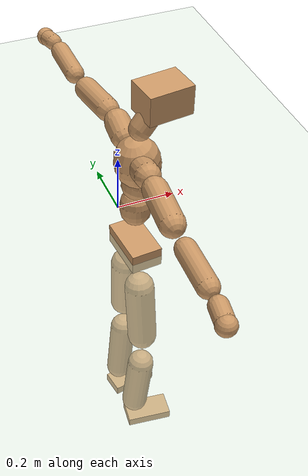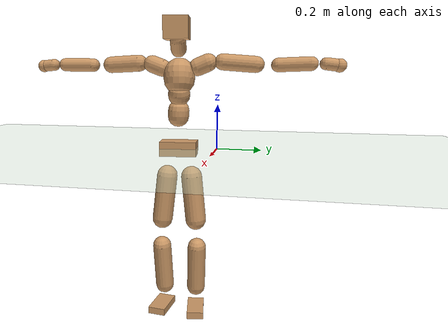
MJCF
<mujoco model="humanoid">
  <compiler coordinate="local" angle="radian"/>
  <default>
    <joint damping="0.0" armature="0.01" stiffness="0.0" limited="true"/>
    <geom conaffinity="1" condim="3" contype="7" margin="0.001" rgba="0.8 0.6 .4 1"/>
  </default>
  <asset>
    <texture type="skybox" builtin="gradient" rgb1=".4 .5 .6" rgb2="0 0 0" width="100" height="100"/>
    <texture builtin="flat" height="1278" mark="cross" markrgb="1 1 1" name="texgeom" random="0.01" rgb1="0.8 0.6 0.4" rgb2="0.8 0.6 0.4" type="cube" width="127"/>
    <texture builtin="checker" height="100" name="texplane" rgb1="0 0 0" rgb2="0.8 0.8 0.8" type="2d" width="100"/>
    <material name="MatPlane" reflectance="0.5" shininess="1" specular="1" texrepeat="60 60" texture="texplane"/>
    <material name="geom" texture="texgeom" texuniform="true"/>
  </asset>
  <worldbody>
    <light cutoff="100" diffuse="1 1 1" dir="-0 0 -1.3" directional="true" exponent="1" pos="0 0 1.3" specular=".1 .1 .1"/>
    <geom conaffinity="1" condim="3" name="floor" pos="0 0 0" rgba="0.8 0.9 0.8 1" size="100 100 .2" type="plane" material="MatPlane"/>
    <body name="Pelvis" pos="-0.004 -0.1813 0.0067">
      <freejoint name="Pelvis"/>
      <geom type="box" contype="1" conaffinity="1" density="500" pos="-0.0064 -0.0005 -0.0106" size="0.0506 0.0848 0.0337" quat="0.9992 0.0000 0.0000 0.0411" name="Pelvis"/>
      <body name="L_Hip" pos="-0.0166 0.0517 -0.0762">
        <joint name="L_Hip_x" type="hinge" pos="0 0 0" axis="1 0 0" stiffness="800" damping="80" armature="0.02" range="-180.0000 180.0000"/>
        <joint name="L_Hip_y" type="hinge" pos="0 0 0" axis="0 1 0" stiffness="800" damping="80" armature="0.02" range="-180.0000 180.0000"/>
        <joint name="L_Hip_z" type="hinge" pos="0 0 0" axis="0 0 1" stiffness="800" damping="80" armature="0.02" range="-180.0000 180.0000"/>
        <geom type="capsule" contype="1" conaffinity="1" density="500" fromto="0.0022 0.0076 -0.0703 0.0087 0.0303 -0.2810" size="0.0492" name="L_Hip"/>
        <body name="L_Knee" pos="0.0109 0.0378 -0.3513">
          <joint name="L_Knee_x" type="hinge" pos="0 0 0" axis="1 0 0" stiffness="800" damping="80" armature="0.02" range="-180.0000 180.0000"/>
          <joint name="L_Knee_y" type="hinge" pos="0 0 0" axis="0 1 0" stiffness="800" damping="80" armature="0.02" range="-180.0000 180.0000"/>
          <joint name="L_Knee_z" type="hinge" pos="0 0 0" axis="0 0 1" stiffness="800" damping="80" armature="0.02" range="-180.0000 180.0000"/>
          <geom type="capsule" contype="1" conaffinity="1" density="500" fromto="-0.0062 -0.0021 -0.0717 -0.0249 -0.0084 -0.2867" size="0.0441" name="L_Knee"/>
          <body name="L_Ankle" pos="-0.0311 -0.0106 -0.3584">
            <joint name="L_Ankle_x" type="hinge" pos="0 0 0" axis="1 0 0" stiffness="800" damping="80" armature="0.02" range="-180.0000 180.0000"/>
            <joint name="L_Ankle_y" type="hinge" pos="0 0 0" axis="0 1 0" stiffness="800" damping="80" armature="0.02" range="-180.0000 180.0000"/>
            <joint name="L_Ankle_z" type="hinge" pos="0 0 0" axis="0 0 1" stiffness="800" damping="80" armature="0.02" range="-180.0000 180.0000"/>
            <geom type="box" contype="1" conaffinity="1" density="500" pos="0.0541 0.0089 -0.0251" size="0.0782 0.0396 0.0168" quat="0.9967 0.0000 0.0000 0.0816" name="L_Ankle"/>
            <body name="L_Toe" pos="0.1083 0.0179 -0.0501">
              <joint name="L_Toe_x" type="hinge" pos="0 0 0" axis="1 0 0" stiffness="500" damping="50" armature="0.02" range="-180.0000 180.0000"/>
              <joint name="L_Toe_y" type="hinge" pos="0 0 0" axis="0 1 0" stiffness="500" damping="50" armature="0.02" range="-180.0000 180.0000"/>
              <joint name="L_Toe_z" type="hinge" pos="0 0 0" axis="0 0 1" stiffness="500" damping="50" armature="0.02" range="-180.0000 180.0000"/>
              <geom type="box" contype="1" conaffinity="1" density="500" pos="0.0000 0.0000 0.0269" size="0.0008 0.002 0.0009" quat="0.9960 0.0000 0.0000 0.0890" name="L_Toe"/>
            </body>
          </body>
        </body>
      </body>
      <body name="R_Hip" pos="-0.014 -0.0507 -0.0738">
        <joint name="R_Hip_x" type="hinge" pos="0 0 0" axis="1 0 0" stiffness="800" damping="80" armature="0.02" range="-180.0000 180.0000"/>
        <joint name="R_Hip_y" type="hinge" pos="0 0 0" axis="0 1 0" stiffness="800" damping="80" armature="0.02" range="-180.0000 180.0000"/>
        <joint name="R_Hip_z" type="hinge" pos="0 0 0" axis="0 0 1" stiffness="800" damping="80" armature="0.02" range="-180.0000 180.0000"/>
        <geom type="capsule" contype="1" conaffinity="1" density="500" fromto="0.0013 -0.0079 -0.0719 0.0053 -0.0317 -0.2875" size="0.0486" name="R_Hip"/>
        <body name="R_Knee" pos="0.0066 -0.0396 -0.3594">
          <joint name="R_Knee_x" type="hinge" pos="0 0 0" axis="1 0 0" stiffness="800" damping="80" armature="0.02" range="-180.0000 180.0000"/>
          <joint name="R_Knee_y" type="hinge" pos="0 0 0" axis="0 1 0" stiffness="800" damping="80" armature="0.02" range="-180.0000 180.0000"/>
          <joint name="R_Knee_z" type="hinge" pos="0 0 0" axis="0 0 1" stiffness="800" damping="80" armature="0.02" range="-180.0000 180.0000"/>
          <geom type="capsule" contype="1" conaffinity="1" density="500" fromto="-0.0058 0.0027 -0.0710 -0.0234 0.0108 -0.2842" size="0.0446" name="R_Knee"/>
          <body name="R_Ankle" pos="-0.0292 0.0135 -0.3552">
            <joint name="R_Ankle_x" type="hinge" pos="0 0 0" axis="1 0 0" stiffness="800" damping="80" armature="0.02" range="-180.0000 180.0000"/>
            <joint name="R_Ankle_y" type="hinge" pos="0 0 0" axis="0 1 0" stiffness="800" damping="80" armature="0.02" range="-180.0000 180.0000"/>
            <joint name="R_Ankle_z" type="hinge" pos="0 0 0" axis="0 0 1" stiffness="800" damping="80" armature="0.02" range="-180.0000 180.0000"/>
            <geom type="box" contype="1" conaffinity="1" density="500" pos="0.0549 -0.0062 -0.0199" size="0.0777 0.0417 0.0164" quat="0.9984 0.0000 0.0000 -0.0566" name="R_Ankle"/>
            <body name="R_Toe" pos="0.1098 -0.0125 -0.0397">
              <joint name="R_Toe_x" type="hinge" pos="0 0 0" axis="1 0 0" stiffness="500" damping="50" armature="0.02" range="-180.0000 180.0000"/>
              <joint name="R_Toe_y" type="hinge" pos="0 0 0" axis="0 1 0" stiffness="500" damping="50" armature="0.02" range="-180.0000 180.0000"/>
              <joint name="R_Toe_z" type="hinge" pos="0 0 0" axis="0 0 1" stiffness="500" damping="50" armature="0.02" range="-180.0000 180.0000"/>
              <geom type="box" contype="1" conaffinity="1" density="500" pos="0.0000 0.0000 0.0230" size="0.0007 0.002 0.001" quat="0.9989 0.0000 0.0000 -0.0468" name="R_Toe"/>
            </body>
          </body>
        </body>
      </body>
      <body name="Torso" pos="-0.0076 -0.0042 0.0866">
        <joint name="Torso_x" type="hinge" pos="0 0 0" axis="1 0 0" stiffness="1000" damping="100" armature="0.02" range="-180.0000 180.0000"/>
        <joint name="Torso_y" type="hinge" pos="0 0 0" axis="0 1 0" stiffness="1000" damping="100" armature="0.02" range="-180.0000 180.0000"/>
        <joint name="Torso_z" type="hinge" pos="0 0 0" axis="0 0 1" stiffness="1000" damping="100" armature="0.02" range="-180.0000 180.0000"/>
        <geom type="capsule" contype="1" conaffinity="1" density="500" fromto="0.0005 0.0034 0.0782 0.0003 0.0023 0.0521" size="0.0493" name="Torso"/>
        <body name="Spine" pos="0.0008 0.0057 0.1303">
          <joint name="Spine_x" type="hinge" pos="0 0 0" axis="1 0 0" stiffness="1000" damping="100" armature="0.02" range="-180.0000 180.0000"/>
          <joint name="Spine_y" type="hinge" pos="0 0 0" axis="0 1 0" stiffness="1000" damping="100" armature="0.02" range="-180.0000 180.0000"/>
          <joint name="Spine_z" type="hinge" pos="0 0 0" axis="0 0 1" stiffness="1000" damping="100" armature="0.02" range="-180.0000 180.0000"/>
          <geom type="capsule" contype="1" conaffinity="1" density="500" fromto="0.0092 0.0021 0.0266 0.0061 0.0014 0.0177" size="0.0507" name="Spine"/>
          <body name="Chest" pos="0.0153 0.0034 0.0443">
            <joint name="Chest_x" type="hinge" pos="0 0 0" axis="1 0 0" stiffness="1000" damping="100" armature="0.02" range="-180.0000 180.0000"/>
            <joint name="Chest_y" type="hinge" pos="0 0 0" axis="0 1 0" stiffness="1000" damping="100" armature="0.02" range="-180.0000 180.0000"/>
            <joint name="Chest_z" type="hinge" pos="0 0 0" axis="0 0 1" stiffness="1000" damping="100" armature="0.02" range="-180.0000 180.0000"/>
            <geom type="capsule" contype="1" conaffinity="1" density="500" fromto="-0.0123 -0.0011 0.0687 -0.0082 -0.0007 0.0458" size="0.0712" name="Chest"/>
            <body name="Neck" pos="-0.0146 -0.0037 0.1633">
              <joint name="Neck_x" type="hinge" pos="0 0 0" axis="1 0 0" stiffness="500" damping="50" armature="0.02" range="-180.0000 180.0000"/>
              <joint name="Neck_y" type="hinge" pos="0 0 0" axis="0 1 0" stiffness="500" damping="50" armature="0.02" range="-180.0000 180.0000"/>
              <joint name="Neck_z" type="hinge" pos="0 0 0" axis="0 0 1" stiffness="500" damping="50" armature="0.02" range="-180.0000 180.0000"/>
              <geom type="capsule" contype="1" conaffinity="1" density="500" fromto="0.0105 0.0010 0.0130 0.0419 0.0041 0.0521" size="0.0354" name="Neck"/>
              <body name="Head" pos="0.0524 0.0051 0.0651">
                <joint name="Head_x" type="hinge" pos="0 0 0" axis="1 0 0" stiffness="500" damping="50" armature="0.02" range="-180.0000 180.0000"/>
                <joint name="Head_y" type="hinge" pos="0 0 0" axis="0 1 0" stiffness="500" damping="50" armature="0.02" range="-180.0000 180.0000"/>
                <joint name="Head_z" type="hinge" pos="0 0 0" axis="0 0 1" stiffness="500" damping="50" armature="0.02" range="-180.0000 180.0000"/>
                <geom type="box" contype="1" conaffinity="1" density="500" pos="0.0272 0.0036 0.0336" size="0.0716 0.0537 0.0473" quat="0.9979 0.0000 0.0000 0.0650" name="Head"/>
              </body>
            </body>
            <body name="L_Thorax" pos="-0.0213 0.065 0.092">
              <joint name="L_Thorax_x" type="hinge" pos="0 0 0" axis="1 0 0" stiffness="500" damping="50" armature="0.02" range="-180.0000 180.0000"/>
              <joint name="L_Thorax_y" type="hinge" pos="0 0 0" axis="0 1 0" stiffness="500" damping="50" armature="0.02" range="-180.0000 180.0000"/>
              <joint name="L_Thorax_z" type="hinge" pos="0 0 0" axis="0 0 1" stiffness="500" damping="50" armature="0.02" range="-180.0000 180.0000"/>
              <geom type="capsule" contype="1" conaffinity="1" density="500" fromto="-0.0007 0.0159 0.0066 -0.0029 0.0635 0.0263" size="0.0402" name="L_Thorax"/>
              <body name="L_Shoulder" pos="-0.0036 0.0794 0.0329">
                <joint name="L_Shoulder_x" type="hinge" pos="0 0 0" axis="1 0 0" stiffness="500" damping="50" armature="0.02" range="-720.0000 720.0000"/>
                <joint name="L_Shoulder_y" type="hinge" pos="0 0 0" axis="0 1 0" stiffness="500" damping="50" armature="0.02" range="-720.0000 720.0000"/>
                <joint name="L_Shoulder_z" type="hinge" pos="0 0 0" axis="0 0 1" stiffness="500" damping="50" armature="0.02" range="-720.0000 720.0000"/>
                <geom type="capsule" contype="1" conaffinity="1" density="500" fromto="-0.0054 0.0489 -0.0038 -0.0217 0.1956 -0.0152" size="0.0368" name="L_Shoulder"/>
                <body name="L_Elbow" pos="-0.0271 0.2445 -0.019">
                  <joint name="L_Elbow_x" type="hinge" pos="0 0 0" axis="1 0 0" stiffness="500" damping="50" armature="0.02" range="-720.0000 720.0000"/>
                  <joint name="L_Elbow_y" type="hinge" pos="0 0 0" axis="0 1 0" stiffness="500" damping="50" armature="0.02" range="-720.0000 720.0000"/>
                  <joint name="L_Elbow_z" type="hinge" pos="0 0 0" axis="0 0 1" stiffness="500" damping="50" armature="0.02" range="-720.0000 720.0000"/>
                  <geom type="capsule" contype="1" conaffinity="1" density="500" fromto="-0.0006 0.0471 0.0017 -0.0025 0.1883 0.0068" size="0.031" name="L_Elbow"/>
                  <body name="L_Wrist" pos="-0.0032 0.2354 0.0086">
                    <joint name="L_Wrist_x" type="hinge" pos="0 0 0" axis="1 0 0" stiffness="300" damping="30" armature="0.02" range="-180.0000 180.0000"/>
                    <joint name="L_Wrist_y" type="hinge" pos="0 0 0" axis="0 1 0" stiffness="300" damping="30" armature="0.02" range="-180.0000 180.0000"/>
                    <joint name="L_Wrist_z" type="hinge" pos="0 0 0" axis="0 0 1" stiffness="300" damping="30" armature="0.02" range="-180.0000 180.0000"/>
                    <geom type="capsule" contype="1" conaffinity="1" density="500" fromto="-0.0025 0.0148 -0.0019 -0.0102 0.0591 -0.0075" size="0.027" name="L_Wrist"/>
                    <body name="L_Hand" pos="-0.0127 0.0738 -0.0094">
                      <joint name="L_Hand_x" type="hinge" pos="0 0 0" axis="1 0 0" stiffness="300" damping="30" armature="0.02" range="-180.0000 180.0000"/>
                      <joint name="L_Hand_y" type="hinge" pos="0 0 0" axis="0 1 0" stiffness="300" damping="30" armature="0.02" range="-180.0000 180.0000"/>
                      <joint name="L_Hand_z" type="hinge" pos="0 0 0" axis="0 0 1" stiffness="300" damping="30" armature="0.02" range="-180.0000 180.0000"/>
                      <geom type="sphere" contype="1" conaffinity="1" density="500" size="0.0297" pos="0.0000 0.0000 0.0000" name="L_Hand"/>
                    </body>
                  </body>
                </body>
              </body>
            </body>
            <body name="R_Thorax" pos="-0.0256 -0.0668 0.0884">
              <joint name="R_Thorax_x" type="hinge" pos="0 0 0" axis="1 0 0" stiffness="500" damping="50" armature="0.02" range="-180.0000 180.0000"/>
              <joint name="R_Thorax_y" type="hinge" pos="0 0 0" axis="0 1 0" stiffness="500" damping="50" armature="0.02" range="-180.0000 180.0000"/>
              <joint name="R_Thorax_z" type="hinge" pos="0 0 0" axis="0 0 1" stiffness="500" damping="50" armature="0.02" range="-180.0000 180.0000"/>
              <geom type="capsule" contype="1" conaffinity="1" density="500" fromto="-0.0021 -0.0169 0.0060 -0.0083 -0.0674 0.0241" size="0.0392" name="R_Thorax"/>
              <body name="R_Shoulder" pos="-0.0104 -0.0843 0.0301">
                <joint name="R_Shoulder_x" type="hinge" pos="0 0 0" axis="1 0 0" stiffness="500" damping="50" armature="0.02" range="-720.0000 720.0000"/>
                <joint name="R_Shoulder_y" type="hinge" pos="0 0 0" axis="0 1 0" stiffness="500" damping="50" armature="0.02" range="-720.0000 720.0000"/>
                <joint name="R_Shoulder_z" type="hinge" pos="0 0 0" axis="0 0 1" stiffness="500" damping="50" armature="0.02" range="-720.0000 720.0000"/>
                <geom type="capsule" contype="1" conaffinity="1" density="500" fromto="-0.0032 -0.0468 -0.0023 -0.0129 -0.1871 -0.0091" size="0.0379" name="R_Shoulder"/>
                <body name="R_Elbow" pos="-0.0162 -0.2338 -0.0113">
                  <joint name="R_Elbow_x" type="hinge" pos="0 0 0" axis="1 0 0" stiffness="500" damping="50" armature="0.02" range="-720.0000 720.0000"/>
                  <joint name="R_Elbow_y" type="hinge" pos="0 0 0" axis="0 1 0" stiffness="500" damping="50" armature="0.02" range="-720.0000 720.0000"/>
                  <joint name="R_Elbow_z" type="hinge" pos="0 0 0" axis="0 0 1" stiffness="500" damping="50" armature="0.02" range="-720.0000 720.0000"/>
                  <geom type="capsule" contype="1" conaffinity="1" density="500" fromto="-0.0015 -0.0477 0.0007 -0.0061 -0.1906 0.0027" size="0.0312" name="R_Elbow"/>
                  <body name="R_Wrist" pos="-0.0076 -0.2383 0.0034">
                    <joint name="R_Wrist_x" type="hinge" pos="0 0 0" axis="1 0 0" stiffness="300" damping="30" armature="0.02" range="-180.0000 180.0000"/>
                    <joint name="R_Wrist_y" type="hinge" pos="0 0 0" axis="0 1 0" stiffness="300" damping="30" armature="0.02" range="-180.0000 180.0000"/>
                    <joint name="R_Wrist_z" type="hinge" pos="0 0 0" axis="0 0 1" stiffness="300" damping="30" armature="0.02" range="-180.0000 180.0000"/>
                    <geom type="capsule" contype="1" conaffinity="1" density="500" fromto="-0.0018 -0.0146 -0.0013 -0.0073 -0.0585 -0.0054" size="0.0274" name="R_Wrist"/>
                    <body name="R_Hand" pos="-0.0092 -0.0731 -0.0067">
                      <joint name="R_Hand_x" type="hinge" pos="0 0 0" axis="1 0 0" stiffness="300" damping="30" armature="0.02" range="-180.0000 180.0000"/>
                      <joint name="R_Hand_y" type="hinge" pos="0 0 0" axis="0 1 0" stiffness="300" damping="30" armature="0.02" range="-180.0000 180.0000"/>
                      <joint name="R_Hand_z" type="hinge" pos="0 0 0" axis="0 0 1" stiffness="300" damping="30" armature="0.02" range="-180.0000 180.0000"/>
                      <geom type="sphere" contype="1" conaffinity="1" density="500" size="0.0292" pos="0.0000 0.0000 0.0000" name="R_Hand"/>
                    </body>
                  </body>
                </body>
              </body>
            </body>
          </body>
        </body>
      </body>
    </body>
  </worldbody>
  <actuator>
    <motor name="L_Hip_x" joint="L_Hip_x" gear="500"/>
    <motor name="L_Hip_y" joint="L_Hip_y" gear="500"/>
    <motor name="L_Hip_z" joint="L_Hip_z" gear="500"/>
    <motor name="L_Knee_x" joint="L_Knee_x" gear="500"/>
    <motor name="L_Knee_y" joint="L_Knee_y" gear="500"/>
    <motor name="L_Knee_z" joint="L_Knee_z" gear="500"/>
    <motor name="L_Ankle_x" joint="L_Ankle_x" gear="500"/>
    <motor name="L_Ankle_y" joint="L_Ankle_y" gear="500"/>
    <motor name="L_Ankle_z" joint="L_Ankle_z" gear="500"/>
    <motor name="L_Toe_x" joint="L_Toe_x" gear="500"/>
    <motor name="L_Toe_y" joint="L_Toe_y" gear="500"/>
    <motor name="L_Toe_z" joint="L_Toe_z" gear="500"/>
    <motor name="R_Hip_x" joint="R_Hip_x" gear="500"/>
    <motor name="R_Hip_y" joint="R_Hip_y" gear="500"/>
    <motor name="R_Hip_z" joint="R_Hip_z" gear="500"/>
    <motor name="R_Knee_x" joint="R_Knee_x" gear="500"/>
    <motor name="R_Knee_y" joint="R_Knee_y" gear="500"/>
    <motor name="R_Knee_z" joint="R_Knee_z" gear="500"/>
    <motor name="R_Ankle_x" joint="R_Ankle_x" gear="500"/>
    <motor name="R_Ankle_y" joint="R_Ankle_y" gear="500"/>
    <motor name="R_Ankle_z" joint="R_Ankle_z" gear="500"/>
    <motor name="R_Toe_x" joint="R_Toe_x" gear="500"/>
    <motor name="R_Toe_y" joint="R_Toe_y" gear="500"/>
    <motor name="R_Toe_z" joint="R_Toe_z" gear="500"/>
    <motor name="Torso_x" joint="Torso_x" gear="500"/>
    <motor name="Torso_y" joint="Torso_y" gear="500"/>
    <motor name="Torso_z" joint="Torso_z" gear="500"/>
    <motor name="Spine_x" joint="Spine_x" gear="500"/>
    <motor name="Spine_y" joint="Spine_y" gear="500"/>
    <motor name="Spine_z" joint="Spine_z" gear="500"/>
    <motor name="Chest_x" joint="Chest_x" gear="500"/>
    <motor name="Chest_y" joint="Chest_y" gear="500"/>
    <motor name="Chest_z" joint="Chest_z" gear="500"/>
    <motor name="Neck_x" joint="Neck_x" gear="500"/>
    <motor name="Neck_y" joint="Neck_y" gear="500"/>
    <motor name="Neck_z" joint="Neck_z" gear="500"/>
    <motor name="Head_x" joint="Head_x" gear="500"/>
    <motor name="Head_y" joint="Head_y" gear="500"/>
    <motor name="Head_z" joint="Head_z" gear="500"/>
    <motor name="L_Thorax_x" joint="L_Thorax_x" gear="500"/>
    <motor name="L_Thorax_y" joint="L_Thorax_y" gear="500"/>
    <motor name="L_Thorax_z" joint="L_Thorax_z" gear="500"/>
    <motor name="L_Shoulder_x" joint="L_Shoulder_x" gear="500"/>
    <motor name="L_Shoulder_y" joint="L_Shoulder_y" gear="500"/>
    <motor name="L_Shoulder_z" joint="L_Shoulder_z" gear="500"/>
    <motor name="L_Elbow_x" joint="L_Elbow_x" gear="500"/>
    <motor name="L_Elbow_y" joint="L_Elbow_y" gear="500"/>
    <motor name="L_Elbow_z" joint="L_Elbow_z" gear="500"/>
    <motor name="L_Wrist_x" joint="L_Wrist_x" gear="500"/>
    <motor name="L_Wrist_y" joint="L_Wrist_y" gear="500"/>
    <motor name="L_Wrist_z" joint="L_Wrist_z" gear="500"/>
    <motor name="L_Hand_x" joint="L_Hand_x" gear="500"/>
    <motor name="L_Hand_y" joint="L_Hand_y" gear="500"/>
    <motor name="L_Hand_z" joint="L_Hand_z" gear="500"/>
    <motor name="R_Thorax_x" joint="R_Thorax_x" gear="500"/>
    <motor name="R_Thorax_y" joint="R_Thorax_y" gear="500"/>
    <motor name="R_Thorax_z" joint="R_Thorax_z" gear="500"/>
    <motor name="R_Shoulder_x" joint="R_Shoulder_x" gear="500"/>
    <motor name="R_Shoulder_y" joint="R_Shoulder_y" gear="500"/>
    <motor name="R_Shoulder_z" joint="R_Shoulder_z" gear="500"/>
    <motor name="R_Elbow_x" joint="R_Elbow_x" gear="500"/>
    <motor name="R_Elbow_y" joint="R_Elbow_y" gear="500"/>
    <motor name="R_Elbow_z" joint="R_Elbow_z" gear="500"/>
    <motor name="R_Wrist_x" joint="R_Wrist_x" gear="500"/>
    <motor name="R_Wrist_y" joint="R_Wrist_y" gear="500"/>
    <motor name="R_Wrist_z" joint="R_Wrist_z" gear="500"/>
    <motor name="R_Hand_x" joint="R_Hand_x" gear="500"/>
    <motor name="R_Hand_y" joint="R_Hand_y" gear="500"/>
    <motor name="R_Hand_z" joint="R_Hand_z" gear="500"/>
  </actuator>
  <contact>
    <exclude body1="Torso" body2="Chest"/>
    <exclude body1="Head" body2="Chest"/>
    <exclude body1="R_Knee" body2="R_Toe"/>
    <exclude body1="R_Knee" body2="L_Ankle"/>
    <exclude body1="R_Knee" body2="L_Toe"/>
    <exclude body1="L_Knee" body2="L_Toe"/>
    <exclude body1="L_Knee" body2="R_Ankle"/>
    <exclude body1="L_Knee" body2="R_Toe"/>
    <exclude body1="L_Shoulder" body2="Chest"/>
    <exclude body1="R_Shoulder" body2="Chest"/>
  </contact>
  <sensor/>
  <size njmax="700" nconmax="700"/>
</mujoco>
